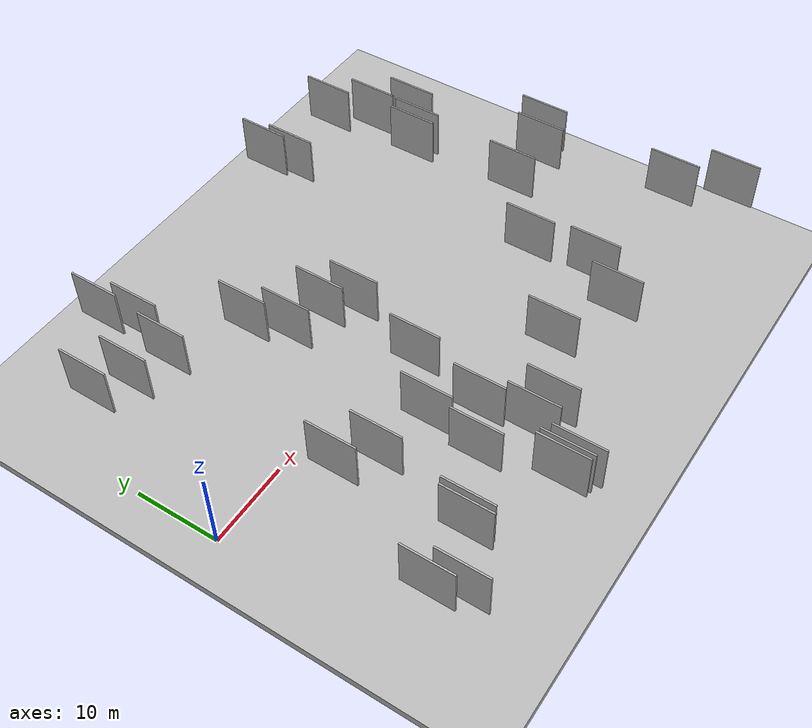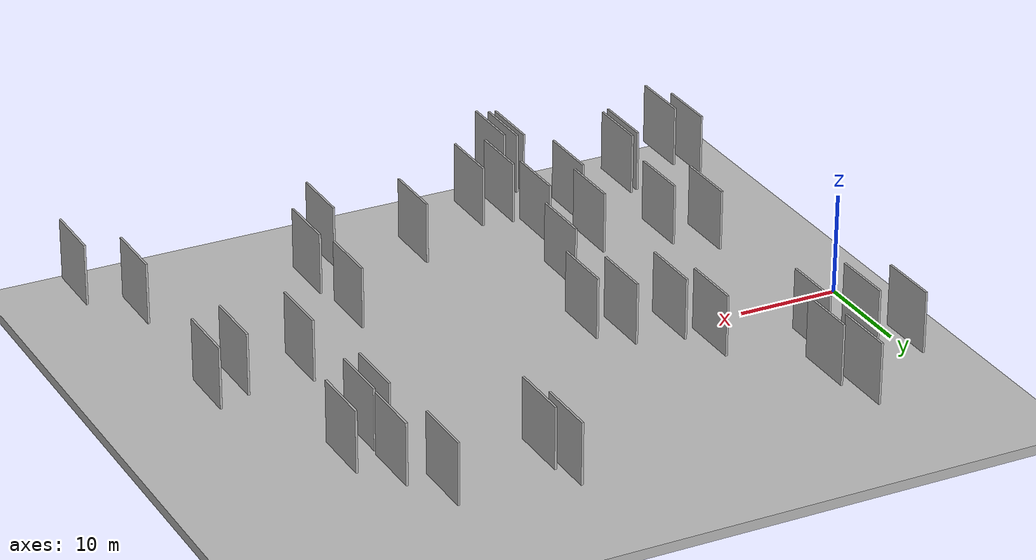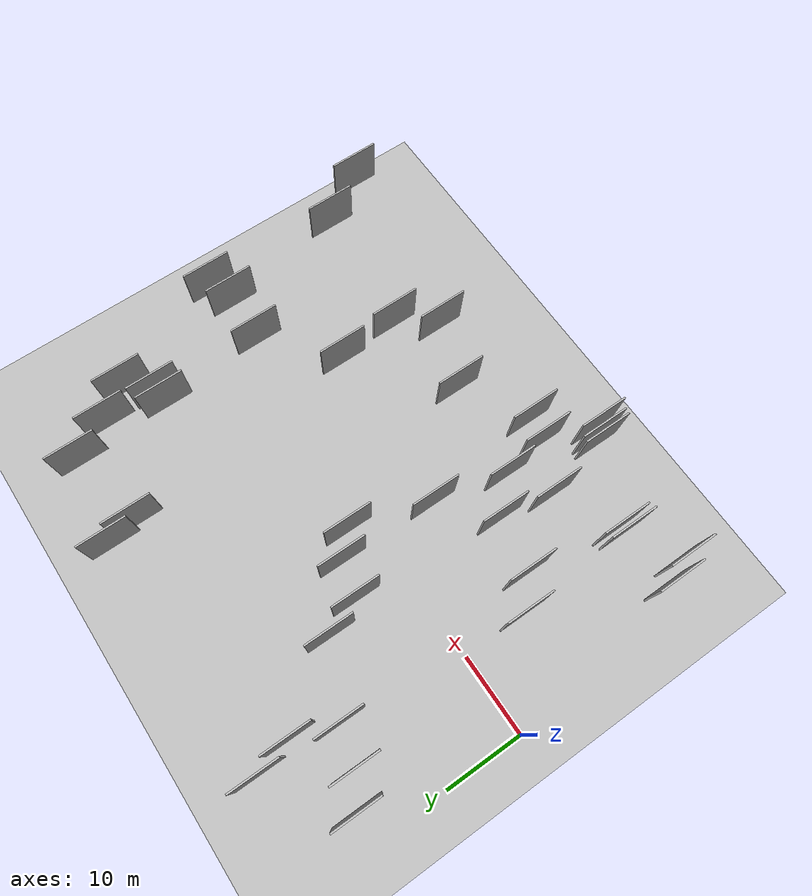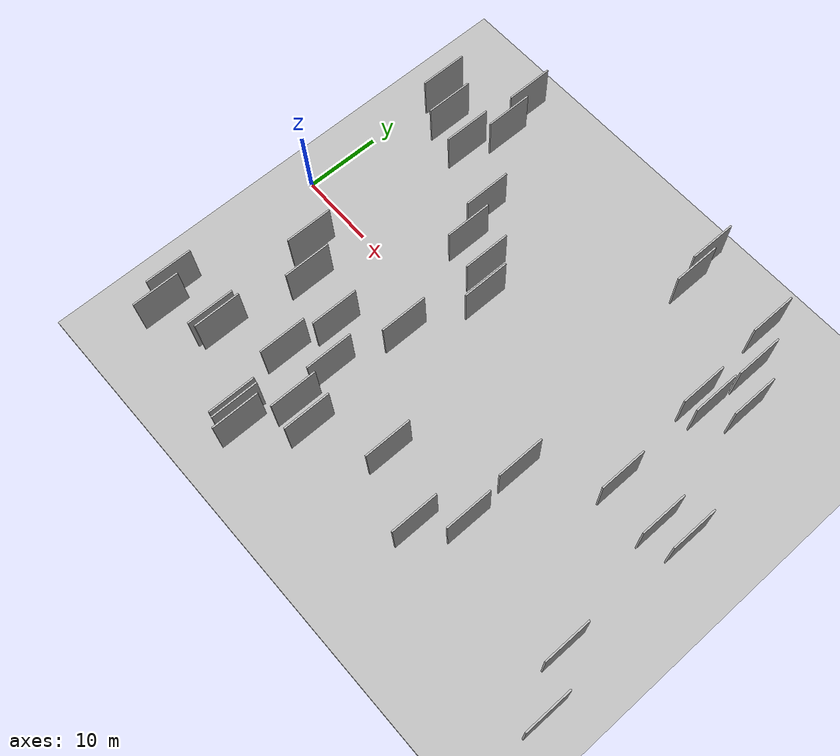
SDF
<?xml version="1.0" encoding="utf-8"?>

<sdf version="1.6">

   <world name="default">

      <gui fullscreen="0">

         <camera name="user_camera">

            <pose>-15 0 4.57585 0 0 0</pose>

            <view_controller>orbit</view_controller>

         </camera>

      </gui>

      <scene>

         <sky>

           <clouds>

             <speed>12</speed>

           </clouds>

         </sky>

         <ambient>0.4 0.4 0.4 1</ambient>

         <background>0.7 0.7 0.7 1</background>

         <shadows>1</shadows>

      </scene>

      <gravity>0 0 -9.8066</gravity>

      <magnetic_field>6e-06 2.3e-05 -4.2e-05</magnetic_field>

      <physics default="0" name="default_physics" type="ode">

         <ode>

            <solver>

               <type>quick</type>

               <iters>10</iters>

               <sor>1.0</sor>

               <use_dynamic_moi_rescaling>0</use_dynamic_moi_rescaling>

            </solver>

            <constraints>

               <cfm>0</cfm>

               <erp>0.2</erp>

               <contact_max_correcting_vel>100</contact_max_correcting_vel>

               <contact_surface_layer>0.001</contact_surface_layer>

            </constraints>

         </ode>

         <max_step_size>0.004</max_step_size>

         <real_time_factor>1</real_time_factor>

         <real_time_update_rate>250</real_time_update_rate>

      </physics>

      <light name="sun" type="directional">

         <cast_shadows>1</cast_shadows>

         <pose>0 0 10 0 0 0</pose>

         <diffuse>0.8 0.8 0.8 1</diffuse>

         <specular>0.2 0.2 0.2 1</specular>

         <attenuation>

            <range>1000</range>

            <constant>0.9</constant>

            <linear>0.01</linear>

            <quadratic>0.001</quadratic>

         </attenuation>

         <direction>-0.5 0.1 -0.9</direction>

      </light>

      <include>

         <name>ground_plane_1</name>

         <uri>model://HANNAS_ground_plane</uri>

         <pose>0 0 0  0 0 0</pose>

      </include>

      <include>

         <name>ground_plane_2</name>

         <uri>model://HANNAS_ground_plane</uri>

         <pose>100 0 0  0 0 0</pose>

      </include>

      <model name="HANNAS_wall_1">

         <static>1</static>

         <pose frame="">10.1386 -6.9735 5.0 0.000000 0.000000 1.570796</pose>

         <link name="link">

            <pose frame="">0 0 3.00 0 0 0</pose>

            <collision name="collision">

               <geometry>

                  <box>

                     <size>6.00 0.2 6.00</size>

                  </box>

               </geometry>

               <max_contacts>10</max_contacts>

               <surface>

                  <contact>

                     <ode/>

                  </contact>

                  <bounce/>

                  <friction>

                     <torsional>

                        <ode/>

                     </torsional>

                     <ode/>

                  </friction>

               </surface>

            </collision>

            <visual name="visual">

               <cast_shadows>0</cast_shadows>

               <geometry>

                  <box>

                     <size>6.00 0.2 6.00</size>

                  </box>

               </geometry>

               <material>

                  <script>

                     <uri>model://HANNAS_wall/materials/scripts</uri>

                     <uri>model://HANNAS_wall/materials/textures</uri>

                     <name>vrc/HANNAS_wall</name>

                  </script>

               </material>

            </visual>

            <self_collide>0</self_collide>

            <enable_wind>0</enable_wind>

            <kinematic>0</kinematic>

         </link>

      </model>

      <model name="HANNAS_wall_2">

         <static>1</static>

         <pose frame="">66.7505 -23.0752 5.0 0.000000 0.000000 1.570796</pose>

         <link name="link">

            <pose frame="">0 0 3.00 0 0 0</pose>

            <collision name="collision">

               <geometry>

                  <box>

                     <size>6.00 0.2 6.00</size>

                  </box>

               </geometry>

               <max_contacts>10</max_contacts>

               <surface>

                  <contact>

                     <ode/>

                  </contact>

                  <bounce/>

                  <friction>

                     <torsional>

                        <ode/>

                     </torsional>

                     <ode/>

                  </friction>

               </surface>

            </collision>

            <visual name="visual">

               <cast_shadows>0</cast_shadows>

               <geometry>

                  <box>

                     <size>6.00 0.2 6.00</size>

                  </box>

               </geometry>

               <material>

                  <script>

                     <uri>model://HANNAS_wall/materials/scripts</uri>

                     <uri>model://HANNAS_wall/materials/textures</uri>

                     <name>vrc/HANNAS_wall</name>

                  </script>

               </material>

            </visual>

            <self_collide>0</self_collide>

            <enable_wind>0</enable_wind>

            <kinematic>0</kinematic>

         </link>

      </model>

      <model name="HANNAS_wall_3">

         <static>1</static>

         <pose frame="">63.6402 0.1319 5.0 0.000000 0.000000 1.570796</pose>

         <link name="link">

            <pose frame="">0 0 3.00 0 0 0</pose>

            <collision name="collision">

               <geometry>

                  <box>

                     <size>6.00 0.2 6.00</size>

                  </box>

               </geometry>

               <max_contacts>10</max_contacts>

               <surface>

                  <contact>

                     <ode/>

                  </contact>

                  <bounce/>

                  <friction>

                     <torsional>

                        <ode/>

                     </torsional>

                     <ode/>

                  </friction>

               </surface>

            </collision>

            <visual name="visual">

               <cast_shadows>0</cast_shadows>

               <geometry>

                  <box>

                     <size>6.00 0.2 6.00</size>

                  </box>

               </geometry>

               <material>

                  <script>

                     <uri>model://HANNAS_wall/materials/scripts</uri>

                     <uri>model://HANNAS_wall/materials/textures</uri>

                     <name>vrc/HANNAS_wall</name>

                  </script>

               </material>

            </visual>

            <self_collide>0</self_collide>

            <enable_wind>0</enable_wind>

            <kinematic>0</kinematic>

         </link>

      </model>

      <model name="HANNAS_wall_4">

         <static>1</static>

         <pose frame="">20.0568 -11.3079 5.0 0.000000 0.000000 1.570796</pose>

         <link name="link">

            <pose frame="">0 0 3.00 0 0 0</pose>

            <collision name="collision">

               <geometry>

                  <box>

                     <size>6.00 0.2 6.00</size>

                  </box>

               </geometry>

               <max_contacts>10</max_contacts>

               <surface>

                  <contact>

                     <ode/>

                  </contact>

                  <bounce/>

                  <friction>

                     <torsional>

                        <ode/>

                     </torsional>

                     <ode/>

                  </friction>

               </surface>

            </collision>

            <visual name="visual">

               <cast_shadows>0</cast_shadows>

               <geometry>

                  <box>

                     <size>6.00 0.2 6.00</size>

                  </box>

               </geometry>

               <material>

                  <script>

                     <uri>model://HANNAS_wall/materials/scripts</uri>

                     <uri>model://HANNAS_wall/materials/textures</uri>

                     <name>vrc/HANNAS_wall</name>

                  </script>

               </material>

            </visual>

            <self_collide>0</self_collide>

            <enable_wind>0</enable_wind>

            <kinematic>0</kinematic>

         </link>

      </model>

      <model name="HANNAS_wall_5">

         <static>1</static>

         <pose frame="">43.5661 -19.9417 5.0 0.000000 0.000000 1.570796</pose>

         <link name="link">

            <pose frame="">0 0 3.00 0 0 0</pose>

            <collision name="collision">

               <geometry>

                  <box>

                     <size>6.00 0.2 6.00</size>

                  </box>

               </geometry>

               <max_contacts>10</max_contacts>

               <surface>

                  <contact>

                     <ode/>

                  </contact>

                  <bounce/>

                  <friction>

                     <torsional>

                        <ode/>

                     </torsional>

                     <ode/>

                  </friction>

               </surface>

            </collision>

            <visual name="visual">

               <cast_shadows>0</cast_shadows>

               <geometry>

                  <box>

                     <size>6.00 0.2 6.00</size>

                  </box>

               </geometry>

               <material>

                  <script>

                     <uri>model://HANNAS_wall/materials/scripts</uri>

                     <uri>model://HANNAS_wall/materials/textures</uri>

                     <name>vrc/HANNAS_wall</name>

                  </script>

               </material>

            </visual>

            <self_collide>0</self_collide>

            <enable_wind>0</enable_wind>

            <kinematic>0</kinematic>

         </link>

      </model>

      <model name="HANNAS_wall_6">

         <static>1</static>

         <pose frame="">11.0318 -21.4893 5.0 0.000000 0.000000 1.570796</pose>

         <link name="link">

            <pose frame="">0 0 3.00 0 0 0</pose>

            <collision name="collision">

               <geometry>

                  <box>

                     <size>6.00 0.2 6.00</size>

                  </box>

               </geometry>

               <max_contacts>10</max_contacts>

               <surface>

                  <contact>

                     <ode/>

                  </contact>

                  <bounce/>

                  <friction>

                     <torsional>

                        <ode/>

                     </torsional>

                     <ode/>

                  </friction>

               </surface>

            </collision>

            <visual name="visual">

               <cast_shadows>0</cast_shadows>

               <geometry>

                  <box>

                     <size>6.00 0.2 6.00</size>

                  </box>

               </geometry>

               <material>

                  <script>

                     <uri>model://HANNAS_wall/materials/scripts</uri>

                     <uri>model://HANNAS_wall/materials/textures</uri>

                     <name>vrc/HANNAS_wall</name>

                  </script>

               </material>

            </visual>

            <self_collide>0</self_collide>

            <enable_wind>0</enable_wind>

            <kinematic>0</kinematic>

         </link>

      </model>

      <model name="HANNAS_wall_7">

         <static>1</static>

         <pose frame="">5.2403 -24.6540 5.0 0.000000 0.000000 1.570796</pose>

         <link name="link">

            <pose frame="">0 0 3.00 0 0 0</pose>

            <collision name="collision">

               <geometry>

                  <box>

                     <size>6.00 0.2 6.00</size>

                  </box>

               </geometry>

               <max_contacts>10</max_contacts>

               <surface>

                  <contact>

                     <ode/>

                  </contact>

                  <bounce/>

                  <friction>

                     <torsional>

                        <ode/>

                     </torsional>

                     <ode/>

                  </friction>

               </surface>

            </collision>

            <visual name="visual">

               <cast_shadows>0</cast_shadows>

               <geometry>

                  <box>

                     <size>6.00 0.2 6.00</size>

                  </box>

               </geometry>

               <material>

                  <script>

                     <uri>model://HANNAS_wall/materials/scripts</uri>

                     <uri>model://HANNAS_wall/materials/textures</uri>

                     <name>vrc/HANNAS_wall</name>

                  </script>

               </material>

            </visual>

            <self_collide>0</self_collide>

            <enable_wind>0</enable_wind>

            <kinematic>0</kinematic>

         </link>

      </model>

      <model name="HANNAS_wall_8">

         <static>1</static>

         <pose frame="">54.8875 12.6172 5.0 0.000000 0.000000 1.570796</pose>

         <link name="link">

            <pose frame="">0 0 3.00 0 0 0</pose>

            <collision name="collision">

               <geometry>

                  <box>

                     <size>6.00 0.2 6.00</size>

                  </box>

               </geometry>

               <max_contacts>10</max_contacts>

               <surface>

                  <contact>

                     <ode/>

                  </contact>

                  <bounce/>

                  <friction>

                     <torsional>

                        <ode/>

                     </torsional>

                     <ode/>

                  </friction>

               </surface>

            </collision>

            <visual name="visual">

               <cast_shadows>0</cast_shadows>

               <geometry>

                  <box>

                     <size>6.00 0.2 6.00</size>

                  </box>

               </geometry>

               <material>

                  <script>

                     <uri>model://HANNAS_wall/materials/scripts</uri>

                     <uri>model://HANNAS_wall/materials/textures</uri>

                     <name>vrc/HANNAS_wall</name>

                  </script>

               </material>

            </visual>

            <self_collide>0</self_collide>

            <enable_wind>0</enable_wind>

            <kinematic>0</kinematic>

         </link>

      </model>

      <model name="HANNAS_wall_9">

         <static>1</static>

         <pose frame="">63.2030 -17.1792 5.0 0.000000 0.000000 1.570796</pose>

         <link name="link">

            <pose frame="">0 0 3.00 0 0 0</pose>

            <collision name="collision">

               <geometry>

                  <box>

                     <size>6.00 0.2 6.00</size>

                  </box>

               </geometry>

               <max_contacts>10</max_contacts>

               <surface>

                  <contact>

                     <ode/>

                  </contact>

                  <bounce/>

                  <friction>

                     <torsional>

                        <ode/>

                     </torsional>

                     <ode/>

                  </friction>

               </surface>

            </collision>

            <visual name="visual">

               <cast_shadows>0</cast_shadows>

               <geometry>

                  <box>

                     <size>6.00 0.2 6.00</size>

                  </box>

               </geometry>

               <material>

                  <script>

                     <uri>model://HANNAS_wall/materials/scripts</uri>

                     <uri>model://HANNAS_wall/materials/textures</uri>

                     <name>vrc/HANNAS_wall</name>

                  </script>

               </material>

            </visual>

            <self_collide>0</self_collide>

            <enable_wind>0</enable_wind>

            <kinematic>0</kinematic>

         </link>

      </model>

      <model name="HANNAS_wall_10">

         <static>1</static>

         <pose frame="">23.7649 -15.0808 5.0 0.000000 0.000000 1.570796</pose>

         <link name="link">

            <pose frame="">0 0 3.00 0 0 0</pose>

            <collision name="collision">

               <geometry>

                  <box>

                     <size>6.00 0.2 6.00</size>

                  </box>

               </geometry>

               <max_contacts>10</max_contacts>

               <surface>

                  <contact>

                     <ode/>

                  </contact>

                  <bounce/>

                  <friction>

                     <torsional>

                        <ode/>

                     </torsional>

                     <ode/>

                  </friction>

               </surface>

            </collision>

            <visual name="visual">

               <cast_shadows>0</cast_shadows>

               <geometry>

                  <box>

                     <size>6.00 0.2 6.00</size>

                  </box>

               </geometry>

               <material>

                  <script>

                     <uri>model://HANNAS_wall/materials/scripts</uri>

                     <uri>model://HANNAS_wall/materials/textures</uri>

                     <name>vrc/HANNAS_wall</name>

                  </script>

               </material>

            </visual>

            <self_collide>0</self_collide>

            <enable_wind>0</enable_wind>

            <kinematic>0</kinematic>

         </link>

      </model>

      <model name="HANNAS_wall_11">

         <static>1</static>

         <pose frame="">3.8571 -21.9180 5.0 0.000000 0.000000 1.570796</pose>

         <link name="link">

            <pose frame="">0 0 3.00 0 0 0</pose>

            <collision name="collision">

               <geometry>

                  <box>

                     <size>6.00 0.2 6.00</size>

                  </box>

               </geometry>

               <max_contacts>10</max_contacts>

               <surface>

                  <contact>

                     <ode/>

                  </contact>

                  <bounce/>

                  <friction>

                     <torsional>

                        <ode/>

                     </torsional>

                     <ode/>

                  </friction>

               </surface>

            </collision>

            <visual name="visual">

               <cast_shadows>0</cast_shadows>

               <geometry>

                  <box>

                     <size>6.00 0.2 6.00</size>

                  </box>

               </geometry>

               <material>

                  <script>

                     <uri>model://HANNAS_wall/materials/scripts</uri>

                     <uri>model://HANNAS_wall/materials/textures</uri>

                     <name>vrc/HANNAS_wall</name>

                  </script>

               </material>

            </visual>

            <self_collide>0</self_collide>

            <enable_wind>0</enable_wind>

            <kinematic>0</kinematic>

         </link>

      </model>

      <model name="HANNAS_wall_12">

         <static>1</static>

         <pose frame="">46.3740 -7.8350 5.0 0.000000 0.000000 1.570796</pose>

         <link name="link">

            <pose frame="">0 0 3.00 0 0 0</pose>

            <collision name="collision">

               <geometry>

                  <box>

                     <size>6.00 0.2 6.00</size>

                  </box>

               </geometry>

               <max_contacts>10</max_contacts>

               <surface>

                  <contact>

                     <ode/>

                  </contact>

                  <bounce/>

                  <friction>

                     <torsional>

                        <ode/>

                     </torsional>

                     <ode/>

                  </friction>

               </surface>

            </collision>

            <visual name="visual">

               <cast_shadows>0</cast_shadows>

               <geometry>

                  <box>

                     <size>6.00 0.2 6.00</size>

                  </box>

               </geometry>

               <material>

                  <script>

                     <uri>model://HANNAS_wall/materials/scripts</uri>

                     <uri>model://HANNAS_wall/materials/textures</uri>

                     <name>vrc/HANNAS_wall</name>

                  </script>

               </material>

            </visual>

            <self_collide>0</self_collide>

            <enable_wind>0</enable_wind>

            <kinematic>0</kinematic>

         </link>

      </model>

      <model name="HANNAS_wall_13">

         <static>1</static>

         <pose frame="">60.5068 -1.0659 5.0 0.000000 0.000000 1.570796</pose>

         <link name="link">

            <pose frame="">0 0 3.00 0 0 0</pose>

            <collision name="collision">

               <geometry>

                  <box>

                     <size>6.00 0.2 6.00</size>

                  </box>

               </geometry>

               <max_contacts>10</max_contacts>

               <surface>

                  <contact>

                     <ode/>

                  </contact>

                  <bounce/>

                  <friction>

                     <torsional>

                        <ode/>

                     </torsional>

                     <ode/>

                  </friction>

               </surface>

            </collision>

            <visual name="visual">

               <cast_shadows>0</cast_shadows>

               <geometry>

                  <box>

                     <size>6.00 0.2 6.00</size>

                  </box>

               </geometry>

               <material>

                  <script>

                     <uri>model://HANNAS_wall/materials/scripts</uri>

                     <uri>model://HANNAS_wall/materials/textures</uri>

                     <name>vrc/HANNAS_wall</name>

                  </script>

               </material>

            </visual>

            <self_collide>0</self_collide>

            <enable_wind>0</enable_wind>

            <kinematic>0</kinematic>

         </link>

      </model>

      <model name="HANNAS_wall_14">

         <static>1</static>

         <pose frame="">13.4800 -9.8954 5.0 0.000000 0.000000 1.570796</pose>

         <link name="link">

            <pose frame="">0 0 3.00 0 0 0</pose>

            <collision name="collision">

               <geometry>

                  <box>

                     <size>6.00 0.2 6.00</size>

                  </box>

               </geometry>

               <max_contacts>10</max_contacts>

               <surface>

                  <contact>

                     <ode/>

                  </contact>

                  <bounce/>

                  <friction>

                     <torsional>

                        <ode/>

                     </torsional>

                     <ode/>

                  </friction>

               </surface>

            </collision>

            <visual name="visual">

               <cast_shadows>0</cast_shadows>

               <geometry>

                  <box>

                     <size>6.00 0.2 6.00</size>

                  </box>

               </geometry>

               <material>

                  <script>

                     <uri>model://HANNAS_wall/materials/scripts</uri>

                     <uri>model://HANNAS_wall/materials/textures</uri>

                     <name>vrc/HANNAS_wall</name>

                  </script>

               </material>

            </visual>

            <self_collide>0</self_collide>

            <enable_wind>0</enable_wind>

            <kinematic>0</kinematic>

         </link>

      </model>

      <model name="HANNAS_wall_15">

         <static>1</static>

         <pose frame="">42.7044 22.3345 5.0 0.000000 0.000000 1.570796</pose>

         <link name="link">

            <pose frame="">0 0 3.00 0 0 0</pose>

            <collision name="collision">

               <geometry>

                  <box>

                     <size>6.00 0.2 6.00</size>

                  </box>

               </geometry>

               <max_contacts>10</max_contacts>

               <surface>

                  <contact>

                     <ode/>

                  </contact>

                  <bounce/>

                  <friction>

                     <torsional>

                        <ode/>

                     </torsional>

                     <ode/>

                  </friction>

               </surface>

            </collision>

            <visual name="visual">

               <cast_shadows>0</cast_shadows>

               <geometry>

                  <box>

                     <size>6.00 0.2 6.00</size>

                  </box>

               </geometry>

               <material>

                  <script>

                     <uri>model://HANNAS_wall/materials/scripts</uri>

                     <uri>model://HANNAS_wall/materials/textures</uri>

                     <name>vrc/HANNAS_wall</name>

                  </script>

               </material>

            </visual>

            <self_collide>0</self_collide>

            <enable_wind>0</enable_wind>

            <kinematic>0</kinematic>

         </link>

      </model>

      <model name="HANNAS_wall_16">

         <static>1</static>

         <pose frame="">53.3178 12.3280 5.0 0.000000 0.000000 1.570796</pose>

         <link name="link">

            <pose frame="">0 0 3.00 0 0 0</pose>

            <collision name="collision">

               <geometry>

                  <box>

                     <size>6.00 0.2 6.00</size>

                  </box>

               </geometry>

               <max_contacts>10</max_contacts>

               <surface>

                  <contact>

                     <ode/>

                  </contact>

                  <bounce/>

                  <friction>

                     <torsional>

                        <ode/>

                     </torsional>

                     <ode/>

                  </friction>

               </surface>

            </collision>

            <visual name="visual">

               <cast_shadows>0</cast_shadows>

               <geometry>

                  <box>

                     <size>6.00 0.2 6.00</size>

                  </box>

               </geometry>

               <material>

                  <script>

                     <uri>model://HANNAS_wall/materials/scripts</uri>

                     <uri>model://HANNAS_wall/materials/textures</uri>

                     <name>vrc/HANNAS_wall</name>

                  </script>

               </material>

            </visual>

            <self_collide>0</self_collide>

            <enable_wind>0</enable_wind>

            <kinematic>0</kinematic>

         </link>

      </model>

      <model name="HANNAS_wall_17">

         <static>1</static>

         <pose frame="">11.9581 15.4447 5.0 0.000000 0.000000 1.570796</pose>

         <link name="link">

            <pose frame="">0 0 3.00 0 0 0</pose>

            <collision name="collision">

               <geometry>

                  <box>

                     <size>6.00 0.2 6.00</size>

                  </box>

               </geometry>

               <max_contacts>10</max_contacts>

               <surface>

                  <contact>

                     <ode/>

                  </contact>

                  <bounce/>

                  <friction>

                     <torsional>

                        <ode/>

                     </torsional>

                     <ode/>

                  </friction>

               </surface>

            </collision>

            <visual name="visual">

               <cast_shadows>0</cast_shadows>

               <geometry>

                  <box>

                     <size>6.00 0.2 6.00</size>

                  </box>

               </geometry>

               <material>

                  <script>

                     <uri>model://HANNAS_wall/materials/scripts</uri>

                     <uri>model://HANNAS_wall/materials/textures</uri>

                     <name>vrc/HANNAS_wall</name>

                  </script>

               </material>

            </visual>

            <self_collide>0</self_collide>

            <enable_wind>0</enable_wind>

            <kinematic>0</kinematic>

         </link>

      </model>

      <model name="HANNAS_wall_18">

         <static>1</static>

         <pose frame="">4.0465 18.6595 5.0 0.000000 0.000000 1.570796</pose>

         <link name="link">

            <pose frame="">0 0 3.00 0 0 0</pose>

            <collision name="collision">

               <geometry>

                  <box>

                     <size>6.00 0.2 6.00</size>

                  </box>

               </geometry>

               <max_contacts>10</max_contacts>

               <surface>

                  <contact>

                     <ode/>

                  </contact>

                  <bounce/>

                  <friction>

                     <torsional>

                        <ode/>

                     </torsional>

                     <ode/>

                  </friction>

               </surface>

            </collision>

            <visual name="visual">

               <cast_shadows>0</cast_shadows>

               <geometry>

                  <box>

                     <size>6.00 0.2 6.00</size>

                  </box>

               </geometry>

               <material>

                  <script>

                     <uri>model://HANNAS_wall/materials/scripts</uri>

                     <uri>model://HANNAS_wall/materials/textures</uri>

                     <name>vrc/HANNAS_wall</name>

                  </script>

               </material>

            </visual>

            <self_collide>0</self_collide>

            <enable_wind>0</enable_wind>

            <kinematic>0</kinematic>

         </link>

      </model>

      <model name="HANNAS_wall_19">

         <static>1</static>

         <pose frame="">12.4734 24.9603 5.0 0.000000 0.000000 1.570796</pose>

         <link name="link">

            <pose frame="">0 0 3.00 0 0 0</pose>

            <collision name="collision">

               <geometry>

                  <box>

                     <size>6.00 0.2 6.00</size>

                  </box>

               </geometry>

               <max_contacts>10</max_contacts>

               <surface>

                  <contact>

                     <ode/>

                  </contact>

                  <bounce/>

                  <friction>

                     <torsional>

                        <ode/>

                     </torsional>

                     <ode/>

                  </friction>

               </surface>

            </collision>

            <visual name="visual">

               <cast_shadows>0</cast_shadows>

               <geometry>

                  <box>

                     <size>6.00 0.2 6.00</size>

                  </box>

               </geometry>

               <material>

                  <script>

                     <uri>model://HANNAS_wall/materials/scripts</uri>

                     <uri>model://HANNAS_wall/materials/textures</uri>

                     <name>vrc/HANNAS_wall</name>

                  </script>

               </material>

            </visual>

            <self_collide>0</self_collide>

            <enable_wind>0</enable_wind>

            <kinematic>0</kinematic>

         </link>

      </model>

      <model name="HANNAS_wall_20">

         <static>1</static>

         <pose frame="">25.9686 5.8600 5.0 0.000000 0.000000 1.570796</pose>

         <link name="link">

            <pose frame="">0 0 3.00 0 0 0</pose>

            <collision name="collision">

               <geometry>

                  <box>

                     <size>6.00 0.2 6.00</size>

                  </box>

               </geometry>

               <max_contacts>10</max_contacts>

               <surface>

                  <contact>

                     <ode/>

                  </contact>

                  <bounce/>

                  <friction>

                     <torsional>

                        <ode/>

                     </torsional>

                     <ode/>

                  </friction>

               </surface>

            </collision>

            <visual name="visual">

               <cast_shadows>0</cast_shadows>

               <geometry>

                  <box>

                     <size>6.00 0.2 6.00</size>

                  </box>

               </geometry>

               <material>

                  <script>

                     <uri>model://HANNAS_wall/materials/scripts</uri>

                     <uri>model://HANNAS_wall/materials/textures</uri>

                     <name>vrc/HANNAS_wall</name>

                  </script>

               </material>

            </visual>

            <self_collide>0</self_collide>

            <enable_wind>0</enable_wind>

            <kinematic>0</kinematic>

         </link>

      </model>

      <model name="HANNAS_wall_21">

         <static>1</static>

         <pose frame="">7.5138 16.5323 5.0 0.000000 0.000000 1.570796</pose>

         <link name="link">

            <pose frame="">0 0 3.00 0 0 0</pose>

            <collision name="collision">

               <geometry>

                  <box>

                     <size>6.00 0.2 6.00</size>

                  </box>

               </geometry>

               <max_contacts>10</max_contacts>

               <surface>

                  <contact>

                     <ode/>

                  </contact>

                  <bounce/>

                  <friction>

                     <torsional>

                        <ode/>

                     </torsional>

                     <ode/>

                  </friction>

               </surface>

            </collision>

            <visual name="visual">

               <cast_shadows>0</cast_shadows>

               <geometry>

                  <box>

                     <size>6.00 0.2 6.00</size>

                  </box>

               </geometry>

               <material>

                  <script>

                     <uri>model://HANNAS_wall/materials/scripts</uri>

                     <uri>model://HANNAS_wall/materials/textures</uri>

                     <name>vrc/HANNAS_wall</name>

                  </script>

               </material>

            </visual>

            <self_collide>0</self_collide>

            <enable_wind>0</enable_wind>

            <kinematic>0</kinematic>

         </link>

      </model>

      <model name="HANNAS_wall_22">

         <static>1</static>

         <pose frame="">21.5355 -26.1223 5.0 0.000000 0.000000 1.570796</pose>

         <link name="link">

            <pose frame="">0 0 3.00 0 0 0</pose>

            <collision name="collision">

               <geometry>

                  <box>

                     <size>6.00 0.2 6.00</size>

                  </box>

               </geometry>

               <max_contacts>10</max_contacts>

               <surface>

                  <contact>

                     <ode/>

                  </contact>

                  <bounce/>

                  <friction>

                     <torsional>

                        <ode/>

                     </torsional>

                     <ode/>

                  </friction>

               </surface>

            </collision>

            <visual name="visual">

               <cast_shadows>0</cast_shadows>

               <geometry>

                  <box>

                     <size>6.00 0.2 6.00</size>

                  </box>

               </geometry>

               <material>

                  <script>

                     <uri>model://HANNAS_wall/materials/scripts</uri>

                     <uri>model://HANNAS_wall/materials/textures</uri>

                     <name>vrc/HANNAS_wall</name>

                  </script>

               </material>

            </visual>

            <self_collide>0</self_collide>

            <enable_wind>0</enable_wind>

            <kinematic>0</kinematic>

         </link>

      </model>

      <model name="HANNAS_wall_23">

         <static>1</static>

         <pose frame="">57.8626 15.3794 5.0 0.000000 0.000000 1.570796</pose>

         <link name="link">

            <pose frame="">0 0 3.00 0 0 0</pose>

            <collision name="collision">

               <geometry>

                  <box>

                     <size>6.00 0.2 6.00</size>

                  </box>

               </geometry>

               <max_contacts>10</max_contacts>

               <surface>

                  <contact>

                     <ode/>

                  </contact>

                  <bounce/>

                  <friction>

                     <torsional>

                        <ode/>

                     </torsional>

                     <ode/>

                  </friction>

               </surface>

            </collision>

            <visual name="visual">

               <cast_shadows>0</cast_shadows>

               <geometry>

                  <box>

                     <size>6.00 0.2 6.00</size>

                  </box>

               </geometry>

               <material>

                  <script>

                     <uri>model://HANNAS_wall/materials/scripts</uri>

                     <uri>model://HANNAS_wall/materials/textures</uri>

                     <name>vrc/HANNAS_wall</name>

                  </script>

               </material>

            </visual>

            <self_collide>0</self_collide>

            <enable_wind>0</enable_wind>

            <kinematic>0</kinematic>

         </link>

      </model>

      <model name="HANNAS_wall_24">

         <static>1</static>

         <pose frame="">11.8003 -21.1577 5.0 0.000000 0.000000 1.570796</pose>

         <link name="link">

            <pose frame="">0 0 3.00 0 0 0</pose>

            <collision name="collision">

               <geometry>

                  <box>

                     <size>6.00 0.2 6.00</size>

                  </box>

               </geometry>

               <max_contacts>10</max_contacts>

               <surface>

                  <contact>

                     <ode/>

                  </contact>

                  <bounce/>

                  <friction>

                     <torsional>

                        <ode/>

                     </torsional>

                     <ode/>

                  </friction>

               </surface>

            </collision>

            <visual name="visual">

               <cast_shadows>0</cast_shadows>

               <geometry>

                  <box>

                     <size>6.00 0.2 6.00</size>

                  </box>

               </geometry>

               <material>

                  <script>

                     <uri>model://HANNAS_wall/materials/scripts</uri>

                     <uri>model://HANNAS_wall/materials/textures</uri>

                     <name>vrc/HANNAS_wall</name>

                  </script>

               </material>

            </visual>

            <self_collide>0</self_collide>

            <enable_wind>0</enable_wind>

            <kinematic>0</kinematic>

         </link>

      </model>

      <model name="HANNAS_wall_25">

         <static>1</static>

         <pose frame="">25.7553 -6.1894 5.0 0.000000 0.000000 1.570796</pose>

         <link name="link">

            <pose frame="">0 0 3.00 0 0 0</pose>

            <collision name="collision">

               <geometry>

                  <box>

                     <size>6.00 0.2 6.00</size>

                  </box>

               </geometry>

               <max_contacts>10</max_contacts>

               <surface>

                  <contact>

                     <ode/>

                  </contact>

                  <bounce/>

                  <friction>

                     <torsional>

                        <ode/>

                     </torsional>

                     <ode/>

                  </friction>

               </surface>

            </collision>

            <visual name="visual">

               <cast_shadows>0</cast_shadows>

               <geometry>

                  <box>

                     <size>6.00 0.2 6.00</size>

                  </box>

               </geometry>

               <material>

                  <script>

                     <uri>model://HANNAS_wall/materials/scripts</uri>

                     <uri>model://HANNAS_wall/materials/textures</uri>

                     <name>vrc/HANNAS_wall</name>

                  </script>

               </material>

            </visual>

            <self_collide>0</self_collide>

            <enable_wind>0</enable_wind>

            <kinematic>0</kinematic>

         </link>

      </model>

      <model name="HANNAS_wall_26">

         <static>1</static>

         <pose frame="">20.8932 -25.9930 5.0 0.000000 0.000000 1.570796</pose>

         <link name="link">

            <pose frame="">0 0 3.00 0 0 0</pose>

            <collision name="collision">

               <geometry>

                  <box>

                     <size>6.00 0.2 6.00</size>

                  </box>

               </geometry>

               <max_contacts>10</max_contacts>

               <surface>

                  <contact>

                     <ode/>

                  </contact>

                  <bounce/>

                  <friction>

                     <torsional>

                        <ode/>

                     </torsional>

                     <ode/>

                  </friction>

               </surface>

            </collision>

            <visual name="visual">

               <cast_shadows>0</cast_shadows>

               <geometry>

                  <box>

                     <size>6.00 0.2 6.00</size>

                  </box>

               </geometry>

               <material>

                  <script>

                     <uri>model://HANNAS_wall/materials/scripts</uri>

                     <uri>model://HANNAS_wall/materials/textures</uri>

                     <name>vrc/HANNAS_wall</name>

                  </script>

               </material>

            </visual>

            <self_collide>0</self_collide>

            <enable_wind>0</enable_wind>

            <kinematic>0</kinematic>

         </link>

      </model>

      <model name="HANNAS_wall_27">

         <static>1</static>

         <pose frame="">28.5901 3.3602 5.0 0.000000 0.000000 1.570796</pose>

         <link name="link">

            <pose frame="">0 0 3.00 0 0 0</pose>

            <collision name="collision">

               <geometry>

                  <box>

                     <size>6.00 0.2 6.00</size>

                  </box>

               </geometry>

               <max_contacts>10</max_contacts>

               <surface>

                  <contact>

                     <ode/>

                  </contact>

                  <bounce/>

                  <friction>

                     <torsional>

                        <ode/>

                     </torsional>

                     <ode/>

                  </friction>

               </surface>

            </collision>

            <visual name="visual">

               <cast_shadows>0</cast_shadows>

               <geometry>

                  <box>

                     <size>6.00 0.2 6.00</size>

                  </box>

               </geometry>

               <material>

                  <script>

                     <uri>model://HANNAS_wall/materials/scripts</uri>

                     <uri>model://HANNAS_wall/materials/textures</uri>

                     <name>vrc/HANNAS_wall</name>

                  </script>

               </material>

            </visual>

            <self_collide>0</self_collide>

            <enable_wind>0</enable_wind>

            <kinematic>0</kinematic>

         </link>

      </model>

      <model name="HANNAS_wall_28">

         <static>1</static>

         <pose frame="">22.5623 -26.7900 5.0 0.000000 0.000000 1.570796</pose>

         <link name="link">

            <pose frame="">0 0 3.00 0 0 0</pose>

            <collision name="collision">

               <geometry>

                  <box>

                     <size>6.00 0.2 6.00</size>

                  </box>

               </geometry>

               <max_contacts>10</max_contacts>

               <surface>

                  <contact>

                     <ode/>

                  </contact>

                  <bounce/>

                  <friction>

                     <torsional>

                        <ode/>

                     </torsional>

                     <ode/>

                  </friction>

               </surface>

            </collision>

            <visual name="visual">

               <cast_shadows>0</cast_shadows>

               <geometry>

                  <box>

                     <size>6.00 0.2 6.00</size>

                  </box>

               </geometry>

               <material>

                  <script>

                     <uri>model://HANNAS_wall/materials/scripts</uri>

                     <uri>model://HANNAS_wall/materials/textures</uri>

                     <name>vrc/HANNAS_wall</name>

                  </script>

               </material>

            </visual>

            <self_collide>0</self_collide>

            <enable_wind>0</enable_wind>

            <kinematic>0</kinematic>

         </link>

      </model>

      <model name="HANNAS_wall_29">

         <static>1</static>

         <pose frame="">21.6309 7.0044 5.0 0.000000 0.000000 1.570796</pose>

         <link name="link">

            <pose frame="">0 0 3.00 0 0 0</pose>

            <collision name="collision">

               <geometry>

                  <box>

                     <size>6.00 0.2 6.00</size>

                  </box>

               </geometry>

               <max_contacts>10</max_contacts>

               <surface>

                  <contact>

                     <ode/>

                  </contact>

                  <bounce/>

                  <friction>

                     <torsional>

                        <ode/>

                     </torsional>

                     <ode/>

                  </friction>

               </surface>

            </collision>

            <visual name="visual">

               <cast_shadows>0</cast_shadows>

               <geometry>

                  <box>

                     <size>6.00 0.2 6.00</size>

                  </box>

               </geometry>

               <material>

                  <script>

                     <uri>model://HANNAS_wall/materials/scripts</uri>

                     <uri>model://HANNAS_wall/materials/textures</uri>

                     <name>vrc/HANNAS_wall</name>

                  </script>

               </material>

            </visual>

            <self_collide>0</self_collide>

            <enable_wind>0</enable_wind>

            <kinematic>0</kinematic>

         </link>

      </model>

      <model name="HANNAS_wall_30">

         <static>1</static>

         <pose frame="">18.9657 -17.6624 5.0 0.000000 0.000000 1.570796</pose>

         <link name="link">

            <pose frame="">0 0 3.00 0 0 0</pose>

            <collision name="collision">

               <geometry>

                  <box>

                     <size>6.00 0.2 6.00</size>

                  </box>

               </geometry>

               <max_contacts>10</max_contacts>

               <surface>

                  <contact>

                     <ode/>

                  </contact>

                  <bounce/>

                  <friction>

                     <torsional>

                        <ode/>

                     </torsional>

                     <ode/>

                  </friction>

               </surface>

            </collision>

            <visual name="visual">

               <cast_shadows>0</cast_shadows>

               <geometry>

                  <box>

                     <size>6.00 0.2 6.00</size>

                  </box>

               </geometry>

               <material>

                  <script>

                     <uri>model://HANNAS_wall/materials/scripts</uri>

                     <uri>model://HANNAS_wall/materials/textures</uri>

                     <name>vrc/HANNAS_wall</name>

                  </script>

               </material>

            </visual>

            <self_collide>0</self_collide>

            <enable_wind>0</enable_wind>

            <kinematic>0</kinematic>

         </link>

      </model>

      <model name="HANNAS_wall_31">

         <static>1</static>

         <pose frame="">55.0142 19.1579 5.0 0.000000 0.000000 1.570796</pose>

         <link name="link">

            <pose frame="">0 0 3.00 0 0 0</pose>

            <collision name="collision">

               <geometry>

                  <box>

                     <size>6.00 0.2 6.00</size>

                  </box>

               </geometry>

               <max_contacts>10</max_contacts>

               <surface>

                  <contact>

                     <ode/>

                  </contact>

                  <bounce/>

                  <friction>

                     <torsional>

                        <ode/>

                     </torsional>

                     <ode/>

                  </friction>

               </surface>

            </collision>

            <visual name="visual">

               <cast_shadows>0</cast_shadows>

               <geometry>

                  <box>

                     <size>6.00 0.2 6.00</size>

                  </box>

               </geometry>

               <material>

                  <script>

                     <uri>model://HANNAS_wall/materials/scripts</uri>

                     <uri>model://HANNAS_wall/materials/textures</uri>

                     <name>vrc/HANNAS_wall</name>

                  </script>

               </material>

            </visual>

            <self_collide>0</self_collide>

            <enable_wind>0</enable_wind>

            <kinematic>0</kinematic>

         </link>

      </model>

      <model name="HANNAS_wall_32">

         <static>1</static>

         <pose frame="">46.9610 -15.5394 5.0 0.000000 0.000000 1.570796</pose>

         <link name="link">

            <pose frame="">0 0 3.00 0 0 0</pose>

            <collision name="collision">

               <geometry>

                  <box>

                     <size>6.00 0.2 6.00</size>

                  </box>

               </geometry>

               <max_contacts>10</max_contacts>

               <surface>

                  <contact>

                     <ode/>

                  </contact>

                  <bounce/>

                  <friction>

                     <torsional>

                        <ode/>

                     </torsional>

                     <ode/>

                  </friction>

               </surface>

            </collision>

            <visual name="visual">

               <cast_shadows>0</cast_shadows>

               <geometry>

                  <box>

                     <size>6.00 0.2 6.00</size>

                  </box>

               </geometry>

               <material>

                  <script>

                     <uri>model://HANNAS_wall/materials/scripts</uri>

                     <uri>model://HANNAS_wall/materials/textures</uri>

                     <name>vrc/HANNAS_wall</name>

                  </script>

               </material>

            </visual>

            <self_collide>0</self_collide>

            <enable_wind>0</enable_wind>

            <kinematic>0</kinematic>

         </link>

      </model>

      <model name="HANNAS_wall_33">

         <static>1</static>

         <pose frame="">41.9378 25.6626 5.0 0.000000 0.000000 1.570796</pose>

         <link name="link">

            <pose frame="">0 0 3.00 0 0 0</pose>

            <collision name="collision">

               <geometry>

                  <box>

                     <size>6.00 0.2 6.00</size>

                  </box>

               </geometry>

               <max_contacts>10</max_contacts>

               <surface>

                  <contact>

                     <ode/>

                  </contact>

                  <bounce/>

                  <friction>

                     <torsional>

                        <ode/>

                     </torsional>

                     <ode/>

                  </friction>

               </surface>

            </collision>

            <visual name="visual">

               <cast_shadows>0</cast_shadows>

               <geometry>

                  <box>

                     <size>6.00 0.2 6.00</size>

                  </box>

               </geometry>

               <material>

                  <script>

                     <uri>model://HANNAS_wall/materials/scripts</uri>

                     <uri>model://HANNAS_wall/materials/textures</uri>

                     <name>vrc/HANNAS_wall</name>

                  </script>

               </material>

            </visual>

            <self_collide>0</self_collide>

            <enable_wind>0</enable_wind>

            <kinematic>0</kinematic>

         </link>

      </model>

      <model name="HANNAS_wall_34">

         <static>1</static>

         <pose frame="">24.6902 -20.6978 5.0 0.000000 0.000000 1.570796</pose>

         <link name="link">

            <pose frame="">0 0 3.00 0 0 0</pose>

            <collision name="collision">

               <geometry>

                  <box>

                     <size>6.00 0.2 6.00</size>

                  </box>

               </geometry>

               <max_contacts>10</max_contacts>

               <surface>

                  <contact>

                     <ode/>

                  </contact>

                  <bounce/>

                  <friction>

                     <torsional>

                        <ode/>

                     </torsional>

                     <ode/>

                  </friction>

               </surface>

            </collision>

            <visual name="visual">

               <cast_shadows>0</cast_shadows>

               <geometry>

                  <box>

                     <size>6.00 0.2 6.00</size>

                  </box>

               </geometry>

               <material>

                  <script>

                     <uri>model://HANNAS_wall/materials/scripts</uri>

                     <uri>model://HANNAS_wall/materials/textures</uri>

                     <name>vrc/HANNAS_wall</name>

                  </script>

               </material>

            </visual>

            <self_collide>0</self_collide>

            <enable_wind>0</enable_wind>

            <kinematic>0</kinematic>

         </link>

      </model>

      <model name="HANNAS_wall_35">

         <static>1</static>

         <pose frame="">52.5952 23.9979 5.0 0.000000 0.000000 1.570796</pose>

         <link name="link">

            <pose frame="">0 0 3.00 0 0 0</pose>

            <collision name="collision">

               <geometry>

                  <box>

                     <size>6.00 0.2 6.00</size>

                  </box>

               </geometry>

               <max_contacts>10</max_contacts>

               <surface>

                  <contact>

                     <ode/>

                  </contact>

                  <bounce/>

                  <friction>

                     <torsional>

                        <ode/>

                     </torsional>

                     <ode/>

                  </friction>

               </surface>

            </collision>

            <visual name="visual">

               <cast_shadows>0</cast_shadows>

               <geometry>

                  <box>

                     <size>6.00 0.2 6.00</size>

                  </box>

               </geometry>

               <material>

                  <script>

                     <uri>model://HANNAS_wall/materials/scripts</uri>

                     <uri>model://HANNAS_wall/materials/textures</uri>

                     <name>vrc/HANNAS_wall</name>

                  </script>

               </material>

            </visual>

            <self_collide>0</self_collide>

            <enable_wind>0</enable_wind>

            <kinematic>0</kinematic>

         </link>

      </model>

      <model name="HANNAS_wall_36">

         <static>1</static>

         <pose frame="">27.6109 -21.2005 5.0 0.000000 0.000000 1.570796</pose>

         <link name="link">

            <pose frame="">0 0 3.00 0 0 0</pose>

            <collision name="collision">

               <geometry>

                  <box>

                     <size>6.00 0.2 6.00</size>

                  </box>

               </geometry>

               <max_contacts>10</max_contacts>

               <surface>

                  <contact>

                     <ode/>

                  </contact>

                  <bounce/>

                  <friction>

                     <torsional>

                        <ode/>

                     </torsional>

                     <ode/>

                  </friction>

               </surface>

            </collision>

            <visual name="visual">

               <cast_shadows>0</cast_shadows>

               <geometry>

                  <box>

                     <size>6.00 0.2 6.00</size>

                  </box>

               </geometry>

               <material>

                  <script>

                     <uri>model://HANNAS_wall/materials/scripts</uri>

                     <uri>model://HANNAS_wall/materials/textures</uri>

                     <name>vrc/HANNAS_wall</name>

                  </script>

               </material>

            </visual>

            <self_collide>0</self_collide>

            <enable_wind>0</enable_wind>

            <kinematic>0</kinematic>

         </link>

      </model>

      <model name="HANNAS_wall_37">

         <static>1</static>

         <pose frame="">13.6352 20.5789 5.0 0.000000 0.000000 1.570796</pose>

         <link name="link">

            <pose frame="">0 0 3.00 0 0 0</pose>

            <collision name="collision">

               <geometry>

                  <box>

                     <size>6.00 0.2 6.00</size>

                  </box>

               </geometry>

               <max_contacts>10</max_contacts>

               <surface>

                  <contact>

                     <ode/>

                  </contact>

                  <bounce/>

                  <friction>

                     <torsional>

                        <ode/>

                     </torsional>

                     <ode/>

                  </friction>

               </surface>

            </collision>

            <visual name="visual">

               <cast_shadows>0</cast_shadows>

               <geometry>

                  <box>

                     <size>6.00 0.2 6.00</size>

                  </box>

               </geometry>

               <material>

                  <script>

                     <uri>model://HANNAS_wall/materials/scripts</uri>

                     <uri>model://HANNAS_wall/materials/textures</uri>

                     <name>vrc/HANNAS_wall</name>

                  </script>

               </material>

            </visual>

            <self_collide>0</self_collide>

            <enable_wind>0</enable_wind>

            <kinematic>0</kinematic>

         </link>

      </model>

      <model name="HANNAS_wall_38">

         <static>1</static>

         <pose frame="">35.6080 -16.7758 5.0 0.000000 0.000000 1.570796</pose>

         <link name="link">

            <pose frame="">0 0 3.00 0 0 0</pose>

            <collision name="collision">

               <geometry>

                  <box>

                     <size>6.00 0.2 6.00</size>

                  </box>

               </geometry>

               <max_contacts>10</max_contacts>

               <surface>

                  <contact>

                     <ode/>

                  </contact>

                  <bounce/>

                  <friction>

                     <torsional>

                        <ode/>

                     </torsional>

                     <ode/>

                  </friction>

               </surface>

            </collision>

            <visual name="visual">

               <cast_shadows>0</cast_shadows>

               <geometry>

                  <box>

                     <size>6.00 0.2 6.00</size>

                  </box>

               </geometry>

               <material>

                  <script>

                     <uri>model://HANNAS_wall/materials/scripts</uri>

                     <uri>model://HANNAS_wall/materials/textures</uri>

                     <name>vrc/HANNAS_wall</name>

                  </script>

               </material>

            </visual>

            <self_collide>0</self_collide>

            <enable_wind>0</enable_wind>

            <kinematic>0</kinematic>

         </link>

      </model>

      <model name="HANNAS_wall_39">

         <static>1</static>

         <pose frame="">19.9538 11.3773 5.0 0.000000 0.000000 1.570796</pose>

         <link name="link">

            <pose frame="">0 0 3.00 0 0 0</pose>

            <collision name="collision">

               <geometry>

                  <box>

                     <size>6.00 0.2 6.00</size>

                  </box>

               </geometry>

               <max_contacts>10</max_contacts>

               <surface>

                  <contact>

                     <ode/>

                  </contact>

                  <bounce/>

                  <friction>

                     <torsional>

                        <ode/>

                     </torsional>

                     <ode/>

                  </friction>

               </surface>

            </collision>

            <visual name="visual">

               <cast_shadows>0</cast_shadows>

               <geometry>

                  <box>

                     <size>6.00 0.2 6.00</size>

                  </box>

               </geometry>

               <material>

                  <script>

                     <uri>model://HANNAS_wall/materials/scripts</uri>

                     <uri>model://HANNAS_wall/materials/textures</uri>

                     <name>vrc/HANNAS_wall</name>

                  </script>

               </material>

            </visual>

            <self_collide>0</self_collide>

            <enable_wind>0</enable_wind>

            <kinematic>0</kinematic>

         </link>

      </model>

      <model name="HANNAS_wall_40">

         <static>1</static>

         <pose frame="">54.3843 -0.8144 5.0 0.000000 0.000000 1.570796</pose>

         <link name="link">

            <pose frame="">0 0 3.00 0 0 0</pose>

            <collision name="collision">

               <geometry>

                  <box>

                     <size>6.00 0.2 6.00</size>

                  </box>

               </geometry>

               <max_contacts>10</max_contacts>

               <surface>

                  <contact>

                     <ode/>

                  </contact>

                  <bounce/>

                  <friction>

                     <torsional>

                        <ode/>

                     </torsional>

                     <ode/>

                  </friction>

               </surface>

            </collision>

            <visual name="visual">

               <cast_shadows>0</cast_shadows>

               <geometry>

                  <box>

                     <size>6.00 0.2 6.00</size>

                  </box>

               </geometry>

               <material>

                  <script>

                     <uri>model://HANNAS_wall/materials/scripts</uri>

                     <uri>model://HANNAS_wall/materials/textures</uri>

                     <name>vrc/HANNAS_wall</name>

                  </script>

               </material>

            </visual>

            <self_collide>0</self_collide>

            <enable_wind>0</enable_wind>

            <kinematic>0</kinematic>

         </link>

      </model>

   </world>

</sdf>
